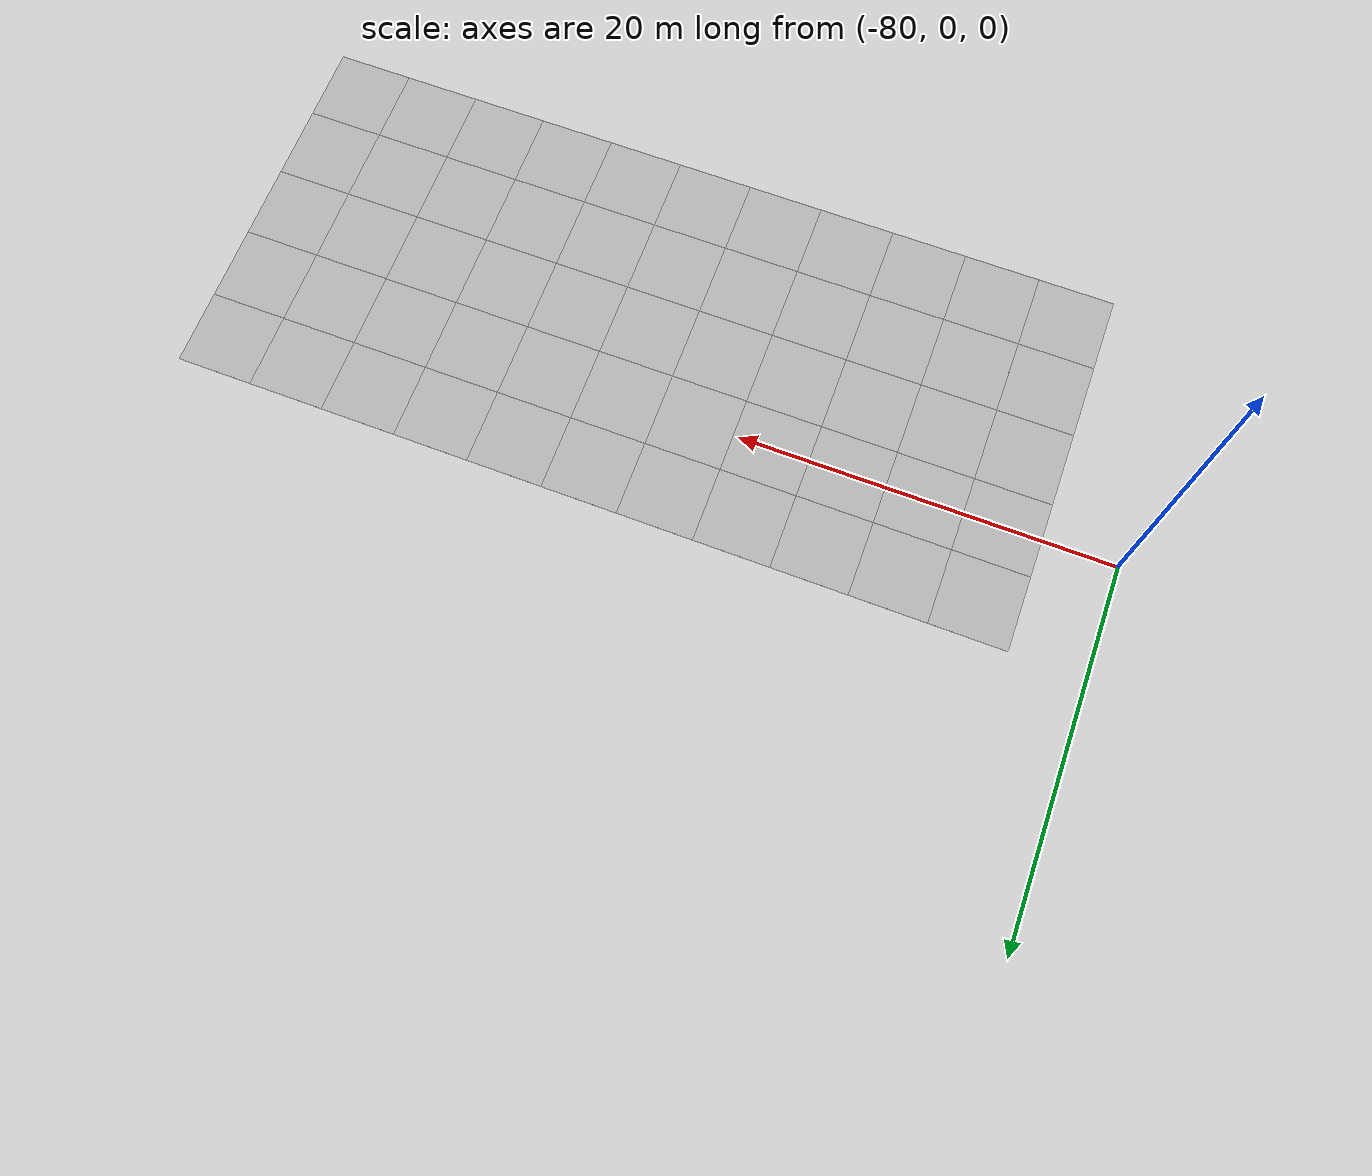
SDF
<sdf version="1.6">
 <world name="default">
  <model name="Tile/0-10">
   <static>1</static>
   <link name="link">
    <collision name="collision">
     <geometry><plane><normal>0 0 1</normal><size>4.096 4.096</size></plane></geometry>
     <surface><friction><ode><mu>100</mu><mu2>50</mu2></ode></friction></surface>
    </collision>
    <visual name="visual">
     <cast_shadows>0</cast_shadows>
     <geometry><plane><normal>0 0 1</normal><size>4.096 4.096</size></plane></geometry>
     <material>
      <script>
       <uri>file://materials/scripts</uri>
       <uri>file://materials/textures</uri>
       <name>Tile/5eab350b8220ac9944dbdfa4ac3288c7c17e24c3bf5df0dfcf6173d64dae00a1</name>
      </script>
     </material>
    </visual>
   </link>
   <pose>-74.02587300576776 -12.336103275294235 0 0 -0 0</pose>
  </model>
  <model name="Tile/0-11">
   <static>1</static>
   <link name="link">
    <collision name="collision">
     <geometry><plane><normal>0 0 1</normal><size>4.096 4.096</size></plane></geometry>
     <surface><friction><ode><mu>100</mu><mu2>50</mu2></ode></friction></surface>
    </collision>
    <visual name="visual">
     <cast_shadows>0</cast_shadows>
     <geometry><plane><normal>0 0 1</normal><size>4.096 4.096</size></plane></geometry>
     <material>
      <script>
       <uri>file://materials/scripts</uri>
       <uri>file://materials/textures</uri>
       <name>Tile/5eab350b8220ac9944dbdfa4ac3288c7c17e24c3bf5df0dfcf6173d64dae00a1</name>
      </script>
     </material>
    </visual>
   </link>
   <pose>-74.02587300576776 -8.240103275294238 0 0 -0 0</pose>
  </model>
  <model name="Tile/0-12">
   <static>1</static>
   <link name="link">
    <collision name="collision">
     <geometry><plane><normal>0 0 1</normal><size>4.096 4.096</size></plane></geometry>
     <surface><friction><ode><mu>100</mu><mu2>50</mu2></ode></friction></surface>
    </collision>
    <visual name="visual">
     <cast_shadows>0</cast_shadows>
     <geometry><plane><normal>0 0 1</normal><size>4.096 4.096</size></plane></geometry>
     <material>
      <script>
       <uri>file://materials/scripts</uri>
       <uri>file://materials/textures</uri>
       <name>Tile/5eab350b8220ac9944dbdfa4ac3288c7c17e24c3bf5df0dfcf6173d64dae00a1</name>
      </script>
     </material>
    </visual>
   </link>
   <pose>-74.02587300576776 -4.144103275294235 0 0 -0 0</pose>
  </model>
  <model name="Tile/0-13">
   <static>1</static>
   <link name="link">
    <collision name="collision">
     <geometry><plane><normal>0 0 1</normal><size>4.096 4.096</size></plane></geometry>
     <surface><friction><ode><mu>100</mu><mu2>50</mu2></ode></friction></surface>
    </collision>
    <visual name="visual">
     <cast_shadows>0</cast_shadows>
     <geometry><plane><normal>0 0 1</normal><size>4.096 4.096</size></plane></geometry>
     <material>
      <script>
       <uri>file://materials/scripts</uri>
       <uri>file://materials/textures</uri>
       <name>Tile/5eab350b8220ac9944dbdfa4ac3288c7c17e24c3bf5df0dfcf6173d64dae00a1</name>
      </script>
     </material>
    </visual>
   </link>
   <pose>-74.02587300576776 -0.0481032752942383 0 0 -0 0</pose>
  </model>
  <model name="Tile/0-14">
   <static>1</static>
   <link name="link">
    <collision name="collision">
     <geometry><plane><normal>0 0 1</normal><size>4.096 4.096</size></plane></geometry>
     <surface><friction><ode><mu>100</mu><mu2>50</mu2></ode></friction></surface>
    </collision>
    <visual name="visual">
     <cast_shadows>0</cast_shadows>
     <geometry><plane><normal>0 0 1</normal><size>4.096 4.096</size></plane></geometry>
     <material>
      <script>
       <uri>file://materials/scripts</uri>
       <uri>file://materials/textures</uri>
       <name>Tile/5eab350b8220ac9944dbdfa4ac3288c7c17e24c3bf5df0dfcf6173d64dae00a1</name>
      </script>
     </material>
    </visual>
   </link>
   <pose>-74.02587300576776 4.047896724705765 0 0 -0 0</pose>
  </model>
  <model name="Tile/1-10">
   <static>1</static>
   <link name="link">
    <collision name="collision">
     <geometry><plane><normal>0 0 1</normal><size>4.096 4.096</size></plane></geometry>
     <surface><friction><ode><mu>100</mu><mu2>50</mu2></ode></friction></surface>
    </collision>
    <visual name="visual">
     <cast_shadows>0</cast_shadows>
     <geometry><plane><normal>0 0 1</normal><size>4.096 4.096</size></plane></geometry>
     <material>
      <script>
       <uri>file://materials/scripts</uri>
       <uri>file://materials/textures</uri>
       <name>Tile/5eab350b8220ac9944dbdfa4ac3288c7c17e24c3bf5df0dfcf6173d64dae00a1</name>
      </script>
     </material>
    </visual>
   </link>
   <pose>-69.92987300576776 -12.336103275294235 0 0 -0 0</pose>
  </model>
  <model name="Tile/1-11">
   <static>1</static>
   <link name="link">
    <collision name="collision">
     <geometry><plane><normal>0 0 1</normal><size>4.096 4.096</size></plane></geometry>
     <surface><friction><ode><mu>100</mu><mu2>50</mu2></ode></friction></surface>
    </collision>
    <visual name="visual">
     <cast_shadows>0</cast_shadows>
     <geometry><plane><normal>0 0 1</normal><size>4.096 4.096</size></plane></geometry>
     <material>
      <script>
       <uri>file://materials/scripts</uri>
       <uri>file://materials/textures</uri>
       <name>Tile/5eab350b8220ac9944dbdfa4ac3288c7c17e24c3bf5df0dfcf6173d64dae00a1</name>
      </script>
     </material>
    </visual>
   </link>
   <pose>-69.92987300576776 -8.240103275294238 0 0 -0 0</pose>
  </model>
  <model name="Tile/1-12">
   <static>1</static>
   <link name="link">
    <collision name="collision">
     <geometry><plane><normal>0 0 1</normal><size>4.096 4.096</size></plane></geometry>
     <surface><friction><ode><mu>100</mu><mu2>50</mu2></ode></friction></surface>
    </collision>
    <visual name="visual">
     <cast_shadows>0</cast_shadows>
     <geometry><plane><normal>0 0 1</normal><size>4.096 4.096</size></plane></geometry>
     <material>
      <script>
       <uri>file://materials/scripts</uri>
       <uri>file://materials/textures</uri>
       <name>Tile/5eab350b8220ac9944dbdfa4ac3288c7c17e24c3bf5df0dfcf6173d64dae00a1</name>
      </script>
     </material>
    </visual>
   </link>
   <pose>-69.92987300576776 -4.144103275294235 0 0 -0 0</pose>
  </model>
  <model name="Tile/1-13">
   <static>1</static>
   <link name="link">
    <collision name="collision">
     <geometry><plane><normal>0 0 1</normal><size>4.096 4.096</size></plane></geometry>
     <surface><friction><ode><mu>100</mu><mu2>50</mu2></ode></friction></surface>
    </collision>
    <visual name="visual">
     <cast_shadows>0</cast_shadows>
     <geometry><plane><normal>0 0 1</normal><size>4.096 4.096</size></plane></geometry>
     <material>
      <script>
       <uri>file://materials/scripts</uri>
       <uri>file://materials/textures</uri>
       <name>Tile/5eab350b8220ac9944dbdfa4ac3288c7c17e24c3bf5df0dfcf6173d64dae00a1</name>
      </script>
     </material>
    </visual>
   </link>
   <pose>-69.92987300576776 -0.0481032752942383 0 0 -0 0</pose>
  </model>
  <model name="Tile/1-14">
   <static>1</static>
   <link name="link">
    <collision name="collision">
     <geometry><plane><normal>0 0 1</normal><size>4.096 4.096</size></plane></geometry>
     <surface><friction><ode><mu>100</mu><mu2>50</mu2></ode></friction></surface>
    </collision>
    <visual name="visual">
     <cast_shadows>0</cast_shadows>
     <geometry><plane><normal>0 0 1</normal><size>4.096 4.096</size></plane></geometry>
     <material>
      <script>
       <uri>file://materials/scripts</uri>
       <uri>file://materials/textures</uri>
       <name>Tile/5eab350b8220ac9944dbdfa4ac3288c7c17e24c3bf5df0dfcf6173d64dae00a1</name>
      </script>
     </material>
    </visual>
   </link>
   <pose>-69.92987300576776 4.047896724705765 0 0 -0 0</pose>
  </model>
  <model name="Tile/2-10">
   <static>1</static>
   <link name="link">
    <collision name="collision">
     <geometry><plane><normal>0 0 1</normal><size>4.096 4.096</size></plane></geometry>
     <surface><friction><ode><mu>100</mu><mu2>50</mu2></ode></friction></surface>
    </collision>
    <visual name="visual">
     <cast_shadows>0</cast_shadows>
     <geometry><plane><normal>0 0 1</normal><size>4.096 4.096</size></plane></geometry>
     <material>
      <script>
       <uri>file://materials/scripts</uri>
       <uri>file://materials/textures</uri>
       <name>Tile/5eab350b8220ac9944dbdfa4ac3288c7c17e24c3bf5df0dfcf6173d64dae00a1</name>
      </script>
     </material>
    </visual>
   </link>
   <pose>-65.83387300576777 -12.336103275294235 0 0 -0 0</pose>
  </model>
  <model name="Tile/2-11">
   <static>1</static>
   <link name="link">
    <collision name="collision">
     <geometry><plane><normal>0 0 1</normal><size>4.096 4.096</size></plane></geometry>
     <surface><friction><ode><mu>100</mu><mu2>50</mu2></ode></friction></surface>
    </collision>
    <visual name="visual">
     <cast_shadows>0</cast_shadows>
     <geometry><plane><normal>0 0 1</normal><size>4.096 4.096</size></plane></geometry>
     <material>
      <script>
       <uri>file://materials/scripts</uri>
       <uri>file://materials/textures</uri>
       <name>Tile/5eab350b8220ac9944dbdfa4ac3288c7c17e24c3bf5df0dfcf6173d64dae00a1</name>
      </script>
     </material>
    </visual>
   </link>
   <pose>-65.83387300576777 -8.240103275294238 0 0 -0 0</pose>
  </model>
  <model name="Tile/2-12">
   <static>1</static>
   <link name="link">
    <collision name="collision">
     <geometry><plane><normal>0 0 1</normal><size>4.096 4.096</size></plane></geometry>
     <surface><friction><ode><mu>100</mu><mu2>50</mu2></ode></friction></surface>
    </collision>
    <visual name="visual">
     <cast_shadows>0</cast_shadows>
     <geometry><plane><normal>0 0 1</normal><size>4.096 4.096</size></plane></geometry>
     <material>
      <script>
       <uri>file://materials/scripts</uri>
       <uri>file://materials/textures</uri>
       <name>Tile/5eab350b8220ac9944dbdfa4ac3288c7c17e24c3bf5df0dfcf6173d64dae00a1</name>
      </script>
     </material>
    </visual>
   </link>
   <pose>-65.83387300576777 -4.144103275294235 0 0 -0 0</pose>
  </model>
  <model name="Tile/2-13">
   <static>1</static>
   <link name="link">
    <collision name="collision">
     <geometry><plane><normal>0 0 1</normal><size>4.096 4.096</size></plane></geometry>
     <surface><friction><ode><mu>100</mu><mu2>50</mu2></ode></friction></surface>
    </collision>
    <visual name="visual">
     <cast_shadows>0</cast_shadows>
     <geometry><plane><normal>0 0 1</normal><size>4.096 4.096</size></plane></geometry>
     <material>
      <script>
       <uri>file://materials/scripts</uri>
       <uri>file://materials/textures</uri>
       <name>Tile/5eab350b8220ac9944dbdfa4ac3288c7c17e24c3bf5df0dfcf6173d64dae00a1</name>
      </script>
     </material>
    </visual>
   </link>
   <pose>-65.83387300576777 -0.0481032752942383 0 0 -0 0</pose>
  </model>
  <model name="Tile/2-14">
   <static>1</static>
   <link name="link">
    <collision name="collision">
     <geometry><plane><normal>0 0 1</normal><size>4.096 4.096</size></plane></geometry>
     <surface><friction><ode><mu>100</mu><mu2>50</mu2></ode></friction></surface>
    </collision>
    <visual name="visual">
     <cast_shadows>0</cast_shadows>
     <geometry><plane><normal>0 0 1</normal><size>4.096 4.096</size></plane></geometry>
     <material>
      <script>
       <uri>file://materials/scripts</uri>
       <uri>file://materials/textures</uri>
       <name>Tile/5eab350b8220ac9944dbdfa4ac3288c7c17e24c3bf5df0dfcf6173d64dae00a1</name>
      </script>
     </material>
    </visual>
   </link>
   <pose>-65.83387300576777 4.047896724705765 0 0 -0 0</pose>
  </model>
  <model name="Tile/3-10">
   <static>1</static>
   <link name="link">
    <collision name="collision">
     <geometry><plane><normal>0 0 1</normal><size>4.096 4.096</size></plane></geometry>
     <surface><friction><ode><mu>100</mu><mu2>50</mu2></ode></friction></surface>
    </collision>
    <visual name="visual">
     <cast_shadows>0</cast_shadows>
     <geometry><plane><normal>0 0 1</normal><size>4.096 4.096</size></plane></geometry>
     <material>
      <script>
       <uri>file://materials/scripts</uri>
       <uri>file://materials/textures</uri>
       <name>Tile/5eab350b8220ac9944dbdfa4ac3288c7c17e24c3bf5df0dfcf6173d64dae00a1</name>
      </script>
     </material>
    </visual>
   </link>
   <pose>-61.73787300576777 -12.336103275294235 0 0 -0 0</pose>
  </model>
  <model name="Tile/3-11">
   <static>1</static>
   <link name="link">
    <collision name="collision">
     <geometry><plane><normal>0 0 1</normal><size>4.096 4.096</size></plane></geometry>
     <surface><friction><ode><mu>100</mu><mu2>50</mu2></ode></friction></surface>
    </collision>
    <visual name="visual">
     <cast_shadows>0</cast_shadows>
     <geometry><plane><normal>0 0 1</normal><size>4.096 4.096</size></plane></geometry>
     <material>
      <script>
       <uri>file://materials/scripts</uri>
       <uri>file://materials/textures</uri>
       <name>Tile/5eab350b8220ac9944dbdfa4ac3288c7c17e24c3bf5df0dfcf6173d64dae00a1</name>
      </script>
     </material>
    </visual>
   </link>
   <pose>-61.73787300576777 -8.240103275294238 0 0 -0 0</pose>
  </model>
  <model name="Tile/3-12">
   <static>1</static>
   <link name="link">
    <collision name="collision">
     <geometry><plane><normal>0 0 1</normal><size>4.096 4.096</size></plane></geometry>
     <surface><friction><ode><mu>100</mu><mu2>50</mu2></ode></friction></surface>
    </collision>
    <visual name="visual">
     <cast_shadows>0</cast_shadows>
     <geometry><plane><normal>0 0 1</normal><size>4.096 4.096</size></plane></geometry>
     <material>
      <script>
       <uri>file://materials/scripts</uri>
       <uri>file://materials/textures</uri>
       <name>Tile/5eab350b8220ac9944dbdfa4ac3288c7c17e24c3bf5df0dfcf6173d64dae00a1</name>
      </script>
     </material>
    </visual>
   </link>
   <pose>-61.73787300576777 -4.144103275294235 0 0 -0 0</pose>
  </model>
  <model name="Tile/3-13">
   <static>1</static>
   <link name="link">
    <collision name="collision">
     <geometry><plane><normal>0 0 1</normal><size>4.096 4.096</size></plane></geometry>
     <surface><friction><ode><mu>100</mu><mu2>50</mu2></ode></friction></surface>
    </collision>
    <visual name="visual">
     <cast_shadows>0</cast_shadows>
     <geometry><plane><normal>0 0 1</normal><size>4.096 4.096</size></plane></geometry>
     <material>
      <script>
       <uri>file://materials/scripts</uri>
       <uri>file://materials/textures</uri>
       <name>Tile/5eab350b8220ac9944dbdfa4ac3288c7c17e24c3bf5df0dfcf6173d64dae00a1</name>
      </script>
     </material>
    </visual>
   </link>
   <pose>-61.73787300576777 -0.0481032752942383 0 0 -0 0</pose>
  </model>
  <model name="Tile/3-14">
   <static>1</static>
   <link name="link">
    <collision name="collision">
     <geometry><plane><normal>0 0 1</normal><size>4.096 4.096</size></plane></geometry>
     <surface><friction><ode><mu>100</mu><mu2>50</mu2></ode></friction></surface>
    </collision>
    <visual name="visual">
     <cast_shadows>0</cast_shadows>
     <geometry><plane><normal>0 0 1</normal><size>4.096 4.096</size></plane></geometry>
     <material>
      <script>
       <uri>file://materials/scripts</uri>
       <uri>file://materials/textures</uri>
       <name>Tile/5eab350b8220ac9944dbdfa4ac3288c7c17e24c3bf5df0dfcf6173d64dae00a1</name>
      </script>
     </material>
    </visual>
   </link>
   <pose>-61.73787300576777 4.047896724705765 0 0 -0 0</pose>
  </model>
  <model name="Tile/4-10">
   <static>1</static>
   <link name="link">
    <collision name="collision">
     <geometry><plane><normal>0 0 1</normal><size>4.096 4.096</size></plane></geometry>
     <surface><friction><ode><mu>100</mu><mu2>50</mu2></ode></friction></surface>
    </collision>
    <visual name="visual">
     <cast_shadows>0</cast_shadows>
     <geometry><plane><normal>0 0 1</normal><size>4.096 4.096</size></plane></geometry>
     <material>
      <script>
       <uri>file://materials/scripts</uri>
       <uri>file://materials/textures</uri>
       <name>Tile/430fde201474325c5adf8c36dc5bd4cc28ff08c3f6ad16af342aa2630fbe4738</name>
      </script>
     </material>
    </visual>
   </link>
   <pose>-57.64187300576776 -12.336103275294235 0 0 -0 0</pose>
  </model>
  <model name="Tile/4-11">
   <static>1</static>
   <link name="link">
    <collision name="collision">
     <geometry><plane><normal>0 0 1</normal><size>4.096 4.096</size></plane></geometry>
     <surface><friction><ode><mu>100</mu><mu2>50</mu2></ode></friction></surface>
    </collision>
    <visual name="visual">
     <cast_shadows>0</cast_shadows>
     <geometry><plane><normal>0 0 1</normal><size>4.096 4.096</size></plane></geometry>
     <material>
      <script>
       <uri>file://materials/scripts</uri>
       <uri>file://materials/textures</uri>
       <name>Tile/5eab350b8220ac9944dbdfa4ac3288c7c17e24c3bf5df0dfcf6173d64dae00a1</name>
      </script>
     </material>
    </visual>
   </link>
   <pose>-57.64187300576776 -8.240103275294238 0 0 -0 0</pose>
  </model>
  <model name="Tile/4-12">
   <static>1</static>
   <link name="link">
    <collision name="collision">
     <geometry><plane><normal>0 0 1</normal><size>4.096 4.096</size></plane></geometry>
     <surface><friction><ode><mu>100</mu><mu2>50</mu2></ode></friction></surface>
    </collision>
    <visual name="visual">
     <cast_shadows>0</cast_shadows>
     <geometry><plane><normal>0 0 1</normal><size>4.096 4.096</size></plane></geometry>
     <material>
      <script>
       <uri>file://materials/scripts</uri>
       <uri>file://materials/textures</uri>
       <name>Tile/5eab350b8220ac9944dbdfa4ac3288c7c17e24c3bf5df0dfcf6173d64dae00a1</name>
      </script>
     </material>
    </visual>
   </link>
   <pose>-57.64187300576776 -4.144103275294235 0 0 -0 0</pose>
  </model>
  <model name="Tile/4-13">
   <static>1</static>
   <link name="link">
    <collision name="collision">
     <geometry><plane><normal>0 0 1</normal><size>4.096 4.096</size></plane></geometry>
     <surface><friction><ode><mu>100</mu><mu2>50</mu2></ode></friction></surface>
    </collision>
    <visual name="visual">
     <cast_shadows>0</cast_shadows>
     <geometry><plane><normal>0 0 1</normal><size>4.096 4.096</size></plane></geometry>
     <material>
      <script>
       <uri>file://materials/scripts</uri>
       <uri>file://materials/textures</uri>
       <name>Tile/5eab350b8220ac9944dbdfa4ac3288c7c17e24c3bf5df0dfcf6173d64dae00a1</name>
      </script>
     </material>
    </visual>
   </link>
   <pose>-57.64187300576776 -0.0481032752942383 0 0 -0 0</pose>
  </model>
  <model name="Tile/4-14">
   <static>1</static>
   <link name="link">
    <collision name="collision">
     <geometry><plane><normal>0 0 1</normal><size>4.096 4.096</size></plane></geometry>
     <surface><friction><ode><mu>100</mu><mu2>50</mu2></ode></friction></surface>
    </collision>
    <visual name="visual">
     <cast_shadows>0</cast_shadows>
     <geometry><plane><normal>0 0 1</normal><size>4.096 4.096</size></plane></geometry>
     <material>
      <script>
       <uri>file://materials/scripts</uri>
       <uri>file://materials/textures</uri>
       <name>Tile/5eab350b8220ac9944dbdfa4ac3288c7c17e24c3bf5df0dfcf6173d64dae00a1</name>
      </script>
     </material>
    </visual>
   </link>
   <pose>-57.64187300576776 4.047896724705765 0 0 -0 0</pose>
  </model>
  <model name="Tile/5-10">
   <static>1</static>
   <link name="link">
    <collision name="collision">
     <geometry><plane><normal>0 0 1</normal><size>4.096 4.096</size></plane></geometry>
     <surface><friction><ode><mu>100</mu><mu2>50</mu2></ode></friction></surface>
    </collision>
    <visual name="visual">
     <cast_shadows>0</cast_shadows>
     <geometry><plane><normal>0 0 1</normal><size>4.096 4.096</size></plane></geometry>
     <material>
      <script>
       <uri>file://materials/scripts</uri>
       <uri>file://materials/textures</uri>
       <name>Tile/55f4ce32f1de3e0d25a9136519288c81ab1342ba7c0f241a5912f162791691b8</name>
      </script>
     </material>
    </visual>
   </link>
   <pose>-53.54587300576777 -12.336103275294235 0 0 -0 0</pose>
  </model>
  <model name="Tile/5-11">
   <static>1</static>
   <link name="link">
    <collision name="collision">
     <geometry><plane><normal>0 0 1</normal><size>4.096 4.096</size></plane></geometry>
     <surface><friction><ode><mu>100</mu><mu2>50</mu2></ode></friction></surface>
    </collision>
    <visual name="visual">
     <cast_shadows>0</cast_shadows>
     <geometry><plane><normal>0 0 1</normal><size>4.096 4.096</size></plane></geometry>
     <material>
      <script>
       <uri>file://materials/scripts</uri>
       <uri>file://materials/textures</uri>
       <name>Tile/5eab350b8220ac9944dbdfa4ac3288c7c17e24c3bf5df0dfcf6173d64dae00a1</name>
      </script>
     </material>
    </visual>
   </link>
   <pose>-53.54587300576777 -8.240103275294238 0 0 -0 0</pose>
  </model>
  <model name="Tile/5-12">
   <static>1</static>
   <link name="link">
    <collision name="collision">
     <geometry><plane><normal>0 0 1</normal><size>4.096 4.096</size></plane></geometry>
     <surface><friction><ode><mu>100</mu><mu2>50</mu2></ode></friction></surface>
    </collision>
    <visual name="visual">
     <cast_shadows>0</cast_shadows>
     <geometry><plane><normal>0 0 1</normal><size>4.096 4.096</size></plane></geometry>
     <material>
      <script>
       <uri>file://materials/scripts</uri>
       <uri>file://materials/textures</uri>
       <name>Tile/5eab350b8220ac9944dbdfa4ac3288c7c17e24c3bf5df0dfcf6173d64dae00a1</name>
      </script>
     </material>
    </visual>
   </link>
   <pose>-53.54587300576777 -4.144103275294235 0 0 -0 0</pose>
  </model>
  <model name="Tile/5-13">
   <static>1</static>
   <link name="link">
    <collision name="collision">
     <geometry><plane><normal>0 0 1</normal><size>4.096 4.096</size></plane></geometry>
     <surface><friction><ode><mu>100</mu><mu2>50</mu2></ode></friction></surface>
    </collision>
    <visual name="visual">
     <cast_shadows>0</cast_shadows>
     <geometry><plane><normal>0 0 1</normal><size>4.096 4.096</size></plane></geometry>
     <material>
      <script>
       <uri>file://materials/scripts</uri>
       <uri>file://materials/textures</uri>
       <name>Tile/5eab350b8220ac9944dbdfa4ac3288c7c17e24c3bf5df0dfcf6173d64dae00a1</name>
      </script>
     </material>
    </visual>
   </link>
   <pose>-53.54587300576777 -0.0481032752942383 0 0 -0 0</pose>
  </model>
  <model name="Tile/5-14">
   <static>1</static>
   <link name="link">
    <collision name="collision">
     <geometry><plane><normal>0 0 1</normal><size>4.096 4.096</size></plane></geometry>
     <surface><friction><ode><mu>100</mu><mu2>50</mu2></ode></friction></surface>
    </collision>
    <visual name="visual">
     <cast_shadows>0</cast_shadows>
     <geometry><plane><normal>0 0 1</normal><size>4.096 4.096</size></plane></geometry>
     <material>
      <script>
       <uri>file://materials/scripts</uri>
       <uri>file://materials/textures</uri>
       <name>Tile/5eab350b8220ac9944dbdfa4ac3288c7c17e24c3bf5df0dfcf6173d64dae00a1</name>
      </script>
     </material>
    </visual>
   </link>
   <pose>-53.54587300576777 4.047896724705765 0 0 -0 0</pose>
  </model>
  <model name="Tile/6-10">
   <static>1</static>
   <link name="link">
    <collision name="collision">
     <geometry><plane><normal>0 0 1</normal><size>4.096 4.096</size></plane></geometry>
     <surface><friction><ode><mu>100</mu><mu2>50</mu2></ode></friction></surface>
    </collision>
    <visual name="visual">
     <cast_shadows>0</cast_shadows>
     <geometry><plane><normal>0 0 1</normal><size>4.096 4.096</size></plane></geometry>
     <material>
      <script>
       <uri>file://materials/scripts</uri>
       <uri>file://materials/textures</uri>
       <name>Tile/61a1aedfdc1bef705a75d991df11ddd85af6c856fafbc87b2fd1d1d12204e0b8</name>
      </script>
     </material>
    </visual>
   </link>
   <pose>-49.44987300576777 -12.336103275294235 0 0 -0 0</pose>
  </model>
  <model name="Tile/6-11">
   <static>1</static>
   <link name="link">
    <collision name="collision">
     <geometry><plane><normal>0 0 1</normal><size>4.096 4.096</size></plane></geometry>
     <surface><friction><ode><mu>100</mu><mu2>50</mu2></ode></friction></surface>
    </collision>
    <visual name="visual">
     <cast_shadows>0</cast_shadows>
     <geometry><plane><normal>0 0 1</normal><size>4.096 4.096</size></plane></geometry>
     <material>
      <script>
       <uri>file://materials/scripts</uri>
       <uri>file://materials/textures</uri>
       <name>Tile/3c419b0ec7673ccb020461dec1b6981bd026895613938609fb2958b7372e5397</name>
      </script>
     </material>
    </visual>
   </link>
   <pose>-49.44987300576777 -8.240103275294238 0 0 -0 0</pose>
  </model>
  <model name="Tile/6-12">
   <static>1</static>
   <link name="link">
    <collision name="collision">
     <geometry><plane><normal>0 0 1</normal><size>4.096 4.096</size></plane></geometry>
     <surface><friction><ode><mu>100</mu><mu2>50</mu2></ode></friction></surface>
    </collision>
    <visual name="visual">
     <cast_shadows>0</cast_shadows>
     <geometry><plane><normal>0 0 1</normal><size>4.096 4.096</size></plane></geometry>
     <material>
      <script>
       <uri>file://materials/scripts</uri>
       <uri>file://materials/textures</uri>
       <name>Tile/5eab350b8220ac9944dbdfa4ac3288c7c17e24c3bf5df0dfcf6173d64dae00a1</name>
      </script>
     </material>
    </visual>
   </link>
   <pose>-49.44987300576777 -4.144103275294235 0 0 -0 0</pose>
  </model>
  <model name="Tile/6-13">
   <static>1</static>
   <link name="link">
    <collision name="collision">
     <geometry><plane><normal>0 0 1</normal><size>4.096 4.096</size></plane></geometry>
     <surface><friction><ode><mu>100</mu><mu2>50</mu2></ode></friction></surface>
    </collision>
    <visual name="visual">
     <cast_shadows>0</cast_shadows>
     <geometry><plane><normal>0 0 1</normal><size>4.096 4.096</size></plane></geometry>
     <material>
      <script>
       <uri>file://materials/scripts</uri>
       <uri>file://materials/textures</uri>
       <name>Tile/5eab350b8220ac9944dbdfa4ac3288c7c17e24c3bf5df0dfcf6173d64dae00a1</name>
      </script>
     </material>
    </visual>
   </link>
   <pose>-49.44987300576777 -0.0481032752942383 0 0 -0 0</pose>
  </model>
  <model name="Tile/6-14">
   <static>1</static>
   <link name="link">
    <collision name="collision">
     <geometry><plane><normal>0 0 1</normal><size>4.096 4.096</size></plane></geometry>
     <surface><friction><ode><mu>100</mu><mu2>50</mu2></ode></friction></surface>
    </collision>
    <visual name="visual">
     <cast_shadows>0</cast_shadows>
     <geometry><plane><normal>0 0 1</normal><size>4.096 4.096</size></plane></geometry>
     <material>
      <script>
       <uri>file://materials/scripts</uri>
       <uri>file://materials/textures</uri>
       <name>Tile/5eab350b8220ac9944dbdfa4ac3288c7c17e24c3bf5df0dfcf6173d64dae00a1</name>
      </script>
     </material>
    </visual>
   </link>
   <pose>-49.44987300576777 4.047896724705765 0 0 -0 0</pose>
  </model>
  <model name="Tile/7-10">
   <static>1</static>
   <link name="link">
    <collision name="collision">
     <geometry><plane><normal>0 0 1</normal><size>4.096 4.096</size></plane></geometry>
     <surface><friction><ode><mu>100</mu><mu2>50</mu2></ode></friction></surface>
    </collision>
    <visual name="visual">
     <cast_shadows>0</cast_shadows>
     <geometry><plane><normal>0 0 1</normal><size>4.096 4.096</size></plane></geometry>
     <material>
      <script>
       <uri>file://materials/scripts</uri>
       <uri>file://materials/textures</uri>
       <name>Tile/a496c7f6ed4525a88560ffe83669486a98fe57a21c411cfa3a803b448173932a</name>
      </script>
     </material>
    </visual>
   </link>
   <pose>-45.35387300576777 -12.336103275294235 0 0 -0 0</pose>
  </model>
  <model name="Tile/7-11">
   <static>1</static>
   <link name="link">
    <collision name="collision">
     <geometry><plane><normal>0 0 1</normal><size>4.096 4.096</size></plane></geometry>
     <surface><friction><ode><mu>100</mu><mu2>50</mu2></ode></friction></surface>
    </collision>
    <visual name="visual">
     <cast_shadows>0</cast_shadows>
     <geometry><plane><normal>0 0 1</normal><size>4.096 4.096</size></plane></geometry>
     <material>
      <script>
       <uri>file://materials/scripts</uri>
       <uri>file://materials/textures</uri>
       <name>Tile/b1a21fc8e2502d7f1b7bf1a626cf183c503609eeb46c10f4de0d888e1a1fe7cd</name>
      </script>
     </material>
    </visual>
   </link>
   <pose>-45.35387300576777 -8.240103275294238 0 0 -0 0</pose>
  </model>
  <model name="Tile/7-12">
   <static>1</static>
   <link name="link">
    <collision name="collision">
     <geometry><plane><normal>0 0 1</normal><size>4.096 4.096</size></plane></geometry>
     <surface><friction><ode><mu>100</mu><mu2>50</mu2></ode></friction></surface>
    </collision>
    <visual name="visual">
     <cast_shadows>0</cast_shadows>
     <geometry><plane><normal>0 0 1</normal><size>4.096 4.096</size></plane></geometry>
     <material>
      <script>
       <uri>file://materials/scripts</uri>
       <uri>file://materials/textures</uri>
       <name>Tile/5eab350b8220ac9944dbdfa4ac3288c7c17e24c3bf5df0dfcf6173d64dae00a1</name>
      </script>
     </material>
    </visual>
   </link>
   <pose>-45.35387300576777 -4.144103275294235 0 0 -0 0</pose>
  </model>
  <model name="Tile/7-13">
   <static>1</static>
   <link name="link">
    <collision name="collision">
     <geometry><plane><normal>0 0 1</normal><size>4.096 4.096</size></plane></geometry>
     <surface><friction><ode><mu>100</mu><mu2>50</mu2></ode></friction></surface>
    </collision>
    <visual name="visual">
     <cast_shadows>0</cast_shadows>
     <geometry><plane><normal>0 0 1</normal><size>4.096 4.096</size></plane></geometry>
     <material>
      <script>
       <uri>file://materials/scripts</uri>
       <uri>file://materials/textures</uri>
       <name>Tile/5eab350b8220ac9944dbdfa4ac3288c7c17e24c3bf5df0dfcf6173d64dae00a1</name>
      </script>
     </material>
    </visual>
   </link>
   <pose>-45.35387300576777 -0.0481032752942383 0 0 -0 0</pose>
  </model>
  <model name="Tile/7-14">
   <static>1</static>
   <link name="link">
    <collision name="collision">
     <geometry><plane><normal>0 0 1</normal><size>4.096 4.096</size></plane></geometry>
     <surface><friction><ode><mu>100</mu><mu2>50</mu2></ode></friction></surface>
    </collision>
    <visual name="visual">
     <cast_shadows>0</cast_shadows>
     <geometry><plane><normal>0 0 1</normal><size>4.096 4.096</size></plane></geometry>
     <material>
      <script>
       <uri>file://materials/scripts</uri>
       <uri>file://materials/textures</uri>
       <name>Tile/5eab350b8220ac9944dbdfa4ac3288c7c17e24c3bf5df0dfcf6173d64dae00a1</name>
      </script>
     </material>
    </visual>
   </link>
   <pose>-45.35387300576777 4.047896724705765 0 0 -0 0</pose>
  </model>
  <model name="Tile/8-10">
   <static>1</static>
   <link name="link">
    <collision name="collision">
     <geometry><plane><normal>0 0 1</normal><size>4.096 4.096</size></plane></geometry>
     <surface><friction><ode><mu>100</mu><mu2>50</mu2></ode></friction></surface>
    </collision>
    <visual name="visual">
     <cast_shadows>0</cast_shadows>
     <geometry><plane><normal>0 0 1</normal><size>4.096 4.096</size></plane></geometry>
     <material>
      <script>
       <uri>file://materials/scripts</uri>
       <uri>file://materials/textures</uri>
       <name>Tile/5eab350b8220ac9944dbdfa4ac3288c7c17e24c3bf5df0dfcf6173d64dae00a1</name>
      </script>
     </material>
    </visual>
   </link>
   <pose>-41.25787300576776 -12.336103275294235 0 0 -0 0</pose>
  </model>
  <model name="Tile/8-11">
   <static>1</static>
   <link name="link">
    <collision name="collision">
     <geometry><plane><normal>0 0 1</normal><size>4.096 4.096</size></plane></geometry>
     <surface><friction><ode><mu>100</mu><mu2>50</mu2></ode></friction></surface>
    </collision>
    <visual name="visual">
     <cast_shadows>0</cast_shadows>
     <geometry><plane><normal>0 0 1</normal><size>4.096 4.096</size></plane></geometry>
     <material>
      <script>
       <uri>file://materials/scripts</uri>
       <uri>file://materials/textures</uri>
       <name>Tile/a00dfe8bd3c10f6713a11901c19817353032afc307ca7af69f9ee56bef4102dc</name>
      </script>
     </material>
    </visual>
   </link>
   <pose>-41.25787300576776 -8.240103275294238 0 0 -0 0</pose>
  </model>
  <model name="Tile/8-12">
   <static>1</static>
   <link name="link">
    <collision name="collision">
     <geometry><plane><normal>0 0 1</normal><size>4.096 4.096</size></plane></geometry>
     <surface><friction><ode><mu>100</mu><mu2>50</mu2></ode></friction></surface>
    </collision>
    <visual name="visual">
     <cast_shadows>0</cast_shadows>
     <geometry><plane><normal>0 0 1</normal><size>4.096 4.096</size></plane></geometry>
     <material>
      <script>
       <uri>file://materials/scripts</uri>
       <uri>file://materials/textures</uri>
       <name>Tile/3d601a37cffc178d2666c07ea1b9f33997f272a2919b7cf65b30adc47b8f822b</name>
      </script>
     </material>
    </visual>
   </link>
   <pose>-41.25787300576776 -4.144103275294235 0 0 -0 0</pose>
  </model>
  <model name="Tile/8-13">
   <static>1</static>
   <link name="link">
    <collision name="collision">
     <geometry><plane><normal>0 0 1</normal><size>4.096 4.096</size></plane></geometry>
     <surface><friction><ode><mu>100</mu><mu2>50</mu2></ode></friction></surface>
    </collision>
    <visual name="visual">
     <cast_shadows>0</cast_shadows>
     <geometry><plane><normal>0 0 1</normal><size>4.096 4.096</size></plane></geometry>
     <material>
      <script>
       <uri>file://materials/scripts</uri>
       <uri>file://materials/textures</uri>
       <name>Tile/5eab350b8220ac9944dbdfa4ac3288c7c17e24c3bf5df0dfcf6173d64dae00a1</name>
      </script>
     </material>
    </visual>
   </link>
   <pose>-41.25787300576776 -0.0481032752942383 0 0 -0 0</pose>
  </model>
  <model name="Tile/8-14">
   <static>1</static>
   <link name="link">
    <collision name="collision">
     <geometry><plane><normal>0 0 1</normal><size>4.096 4.096</size></plane></geometry>
     <surface><friction><ode><mu>100</mu><mu2>50</mu2></ode></friction></surface>
    </collision>
    <visual name="visual">
     <cast_shadows>0</cast_shadows>
     <geometry><plane><normal>0 0 1</normal><size>4.096 4.096</size></plane></geometry>
     <material>
      <script>
       <uri>file://materials/scripts</uri>
       <uri>file://materials/textures</uri>
       <name>Tile/5eab350b8220ac9944dbdfa4ac3288c7c17e24c3bf5df0dfcf6173d64dae00a1</name>
      </script>
     </material>
    </visual>
   </link>
   <pose>-41.25787300576776 4.047896724705765 0 0 -0 0</pose>
  </model>
  <model name="Tile/9-10">
   <static>1</static>
   <link name="link">
    <collision name="collision">
     <geometry><plane><normal>0 0 1</normal><size>4.096 4.096</size></plane></geometry>
     <surface><friction><ode><mu>100</mu><mu2>50</mu2></ode></friction></surface>
    </collision>
    <visual name="visual">
     <cast_shadows>0</cast_shadows>
     <geometry><plane><normal>0 0 1</normal><size>4.096 4.096</size></plane></geometry>
     <material>
      <script>
       <uri>file://materials/scripts</uri>
       <uri>file://materials/textures</uri>
       <name>Tile/5eab350b8220ac9944dbdfa4ac3288c7c17e24c3bf5df0dfcf6173d64dae00a1</name>
      </script>
     </material>
    </visual>
   </link>
   <pose>-37.16187300576777 -12.336103275294235 0 0 -0 0</pose>
  </model>
  <model name="Tile/9-11">
   <static>1</static>
   <link name="link">
    <collision name="collision">
     <geometry><plane><normal>0 0 1</normal><size>4.096 4.096</size></plane></geometry>
     <surface><friction><ode><mu>100</mu><mu2>50</mu2></ode></friction></surface>
    </collision>
    <visual name="visual">
     <cast_shadows>0</cast_shadows>
     <geometry><plane><normal>0 0 1</normal><size>4.096 4.096</size></plane></geometry>
     <material>
      <script>
       <uri>file://materials/scripts</uri>
       <uri>file://materials/textures</uri>
       <name>Tile/fb1f6777b685f42b46400a6a5d52067d21901fe7e79908285cf925f4304d0994</name>
      </script>
     </material>
    </visual>
   </link>
   <pose>-37.16187300576777 -8.240103275294238 0 0 -0 0</pose>
  </model>
  <model name="Tile/9-12">
   <static>1</static>
   <link name="link">
    <collision name="collision">
     <geometry><plane><normal>0 0 1</normal><size>4.096 4.096</size></plane></geometry>
     <surface><friction><ode><mu>100</mu><mu2>50</mu2></ode></friction></surface>
    </collision>
    <visual name="visual">
     <cast_shadows>0</cast_shadows>
     <geometry><plane><normal>0 0 1</normal><size>4.096 4.096</size></plane></geometry>
     <material>
      <script>
       <uri>file://materials/scripts</uri>
       <uri>file://materials/textures</uri>
       <name>Tile/717cd2f32d9007a8187cbedab0b599400e531ea81a79fd65c09b29a592226bfd</name>
      </script>
     </material>
    </visual>
   </link>
   <pose>-37.16187300576777 -4.144103275294235 0 0 -0 0</pose>
  </model>
  <model name="Tile/9-13">
   <static>1</static>
   <link name="link">
    <collision name="collision">
     <geometry><plane><normal>0 0 1</normal><size>4.096 4.096</size></plane></geometry>
     <surface><friction><ode><mu>100</mu><mu2>50</mu2></ode></friction></surface>
    </collision>
    <visual name="visual">
     <cast_shadows>0</cast_shadows>
     <geometry><plane><normal>0 0 1</normal><size>4.096 4.096</size></plane></geometry>
     <material>
      <script>
       <uri>file://materials/scripts</uri>
       <uri>file://materials/textures</uri>
       <name>Tile/5eab350b8220ac9944dbdfa4ac3288c7c17e24c3bf5df0dfcf6173d64dae00a1</name>
      </script>
     </material>
    </visual>
   </link>
   <pose>-37.16187300576777 -0.0481032752942383 0 0 -0 0</pose>
  </model>
  <model name="Tile/9-14">
   <static>1</static>
   <link name="link">
    <collision name="collision">
     <geometry><plane><normal>0 0 1</normal><size>4.096 4.096</size></plane></geometry>
     <surface><friction><ode><mu>100</mu><mu2>50</mu2></ode></friction></surface>
    </collision>
    <visual name="visual">
     <cast_shadows>0</cast_shadows>
     <geometry><plane><normal>0 0 1</normal><size>4.096 4.096</size></plane></geometry>
     <material>
      <script>
       <uri>file://materials/scripts</uri>
       <uri>file://materials/textures</uri>
       <name>Tile/5eab350b8220ac9944dbdfa4ac3288c7c17e24c3bf5df0dfcf6173d64dae00a1</name>
      </script>
     </material>
    </visual>
   </link>
   <pose>-37.16187300576777 4.047896724705765 0 0 -0 0</pose>
  </model>
  <model name="Tile/10-10">
   <static>1</static>
   <link name="link">
    <collision name="collision">
     <geometry><plane><normal>0 0 1</normal><size>4.096 4.096</size></plane></geometry>
     <surface><friction><ode><mu>100</mu><mu2>50</mu2></ode></friction></surface>
    </collision>
    <visual name="visual">
     <cast_shadows>0</cast_shadows>
     <geometry><plane><normal>0 0 1</normal><size>4.096 4.096</size></plane></geometry>
     <material>
      <script>
       <uri>file://materials/scripts</uri>
       <uri>file://materials/textures</uri>
       <name>Tile/5eab350b8220ac9944dbdfa4ac3288c7c17e24c3bf5df0dfcf6173d64dae00a1</name>
      </script>
     </material>
    </visual>
   </link>
   <pose>-33.06587300576776 -12.336103275294235 0 0 -0 0</pose>
  </model>
  <model name="Tile/10-11">
   <static>1</static>
   <link name="link">
    <collision name="collision">
     <geometry><plane><normal>0 0 1</normal><size>4.096 4.096</size></plane></geometry>
     <surface><friction><ode><mu>100</mu><mu2>50</mu2></ode></friction></surface>
    </collision>
    <visual name="visual">
     <cast_shadows>0</cast_shadows>
     <geometry><plane><normal>0 0 1</normal><size>4.096 4.096</size></plane></geometry>
     <material>
      <script>
       <uri>file://materials/scripts</uri>
       <uri>file://materials/textures</uri>
       <name>Tile/5eab350b8220ac9944dbdfa4ac3288c7c17e24c3bf5df0dfcf6173d64dae00a1</name>
      </script>
     </material>
    </visual>
   </link>
   <pose>-33.06587300576776 -8.240103275294238 0 0 -0 0</pose>
  </model>
  <model name="Tile/10-12">
   <static>1</static>
   <link name="link">
    <collision name="collision">
     <geometry><plane><normal>0 0 1</normal><size>4.096 4.096</size></plane></geometry>
     <surface><friction><ode><mu>100</mu><mu2>50</mu2></ode></friction></surface>
    </collision>
    <visual name="visual">
     <cast_shadows>0</cast_shadows>
     <geometry><plane><normal>0 0 1</normal><size>4.096 4.096</size></plane></geometry>
     <material>
      <script>
       <uri>file://materials/scripts</uri>
       <uri>file://materials/textures</uri>
       <name>Tile/a2bcaa4ee0142906c9b7ac2ff3b9f7cc2062393bdf169e561755a461fa87952a</name>
      </script>
     </material>
    </visual>
   </link>
   <pose>-33.06587300576776 -4.144103275294235 0 0 -0 0</pose>
  </model>
  <model name="Tile/10-13">
   <static>1</static>
   <link name="link">
    <collision name="collision">
     <geometry><plane><normal>0 0 1</normal><size>4.096 4.096</size></plane></geometry>
     <surface><friction><ode><mu>100</mu><mu2>50</mu2></ode></friction></surface>
    </collision>
    <visual name="visual">
     <cast_shadows>0</cast_shadows>
     <geometry><plane><normal>0 0 1</normal><size>4.096 4.096</size></plane></geometry>
     <material>
      <script>
       <uri>file://materials/scripts</uri>
       <uri>file://materials/textures</uri>
       <name>Tile/5eab350b8220ac9944dbdfa4ac3288c7c17e24c3bf5df0dfcf6173d64dae00a1</name>
      </script>
     </material>
    </visual>
   </link>
   <pose>-33.06587300576776 -0.0481032752942383 0 0 -0 0</pose>
  </model>
  <model name="Tile/10-14">
   <static>1</static>
   <link name="link">
    <collision name="collision">
     <geometry><plane><normal>0 0 1</normal><size>4.096 4.096</size></plane></geometry>
     <surface><friction><ode><mu>100</mu><mu2>50</mu2></ode></friction></surface>
    </collision>
    <visual name="visual">
     <cast_shadows>0</cast_shadows>
     <geometry><plane><normal>0 0 1</normal><size>4.096 4.096</size></plane></geometry>
     <material>
      <script>
       <uri>file://materials/scripts</uri>
       <uri>file://materials/textures</uri>
       <name>Tile/5eab350b8220ac9944dbdfa4ac3288c7c17e24c3bf5df0dfcf6173d64dae00a1</name>
      </script>
     </material>
    </visual>
   </link>
   <pose>-33.06587300576776 4.047896724705765 0 0 -0 0</pose>
  </model>
 </world>
</sdf>
